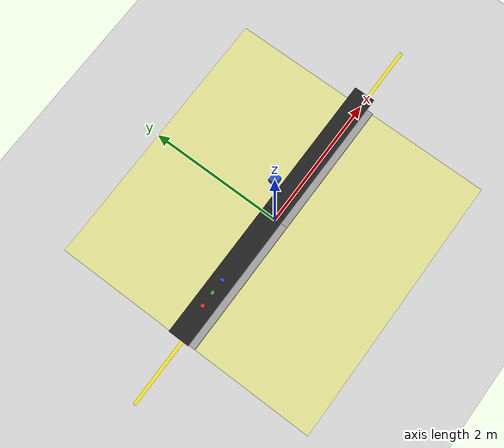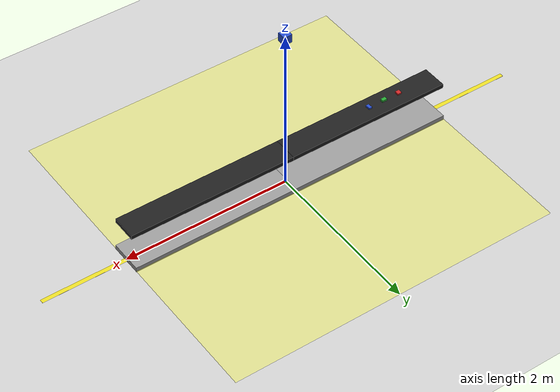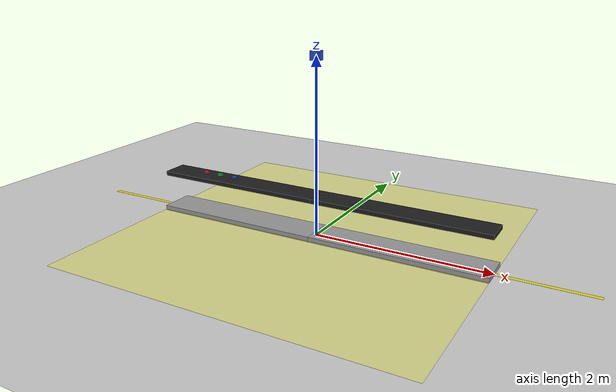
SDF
<?xml version="1.0" ?>
<sdf version="1.7">
  <world name="factory_testbed">
    <!-- Physics settings -->
    <physics name="default_physics" default="1" type="ode">
      <max_step_size>0.001</max_step_size>
      <real_time_factor>1.0</real_time_factor>
      <real_time_update_rate>1000</real_time_update_rate>
    </physics>

    <!-- Scene settings -->
    <scene>
      <ambient>0.4 0.4 0.4 1.0</ambient>
      <background>0.7 0.7 0.7 1.0</background>
      <shadows>1</shadows>
    </scene>

    <!-- Sun light -->
    <light type="directional" name="sun">
      <cast_shadows>true</cast_shadows>
      <pose>0 0 10 0 0 0</pose>
      <diffuse>0.8 0.8 0.8 1</diffuse>
      <specular>0.2 0.2 0.2 1</specular>
      <attenuation>
        <range>1000</range>
        <constant>0.9</constant>
        <linear>0.01</linear>
        <quadratic>0.001</quadratic>
      </attenuation>
      <direction>-0.5 0.1 -0.9</direction>
    </light>

    <!-- Additional factory lighting -->
    <light name="factory_light_1" type="point">
      <pose>-2 2 3 0 0 0</pose>
      <diffuse>0.6 0.6 0.6 1</diffuse>
      <specular>0.1 0.1 0.1 1</specular>
      <attenuation>
        <range>20</range>
        <constant>0.5</constant>
        <linear>0.01</linear>
        <quadratic>0.001</quadratic>
      </attenuation>
    </light>

    <light name="factory_light_2" type="point">
      <pose>2 2 3 0 0 0</pose>
      <diffuse>0.6 0.6 0.6 1</diffuse>
      <specular>0.1 0.1 0.1 1</specular>
      <attenuation>
        <range>20</range>
        <constant>0.5</constant>
        <linear>0.01</linear>
        <quadratic>0.001</quadratic>
      </attenuation>
    </light>

    <!-- Ground plane -->
    <model name="ground_plane">
      <static>true</static>
      <link name="link">
        <collision name="collision">
          <geometry>
            <plane>
              <normal>0 0 1</normal>
              <size>20 20</size>
            </plane>
          </geometry>
          <surface>
            <friction>
              <ode>
                <mu>100</mu>
                <mu2>50</mu2>
              </ode>
            </friction>
          </surface>
        </collision>
        <visual name="visual">
          <cast_shadows>false</cast_shadows>
          <geometry>
            <plane>
              <normal>0 0 1</normal>
              <size>20 20</size>
            </plane>
          </geometry>
          <material>
            <script>
              <uri>file://media/materials/scripts/gazebo.material</uri>
              <name>Gazebo/Grey</name>
            </script>
          </material>
        </visual>
      </link>
    </model>

    <!-- Factory floor markings -->
    <model name="factory_floor">
      <static>true</static>
      <pose>0 0 0.001 0 0 0</pose>
      <link name="floor_markings">
        <visual name="center_line">
          <pose>0 0 0 0 0 0</pose>
          <geometry>
            <box>
              <size>6 0.05 0.001</size>
            </box>
          </geometry>
          <material>
            <script>
              <uri>file://media/materials/scripts/gazebo.material</uri>
              <name>Gazebo/Yellow</name>
            </script>
          </material>
        </visual>

        <visual name="safety_zone_1">
          <pose>0 0 0 0 0 0</pose>
          <geometry>
            <box>
              <size>4 4 0.001</size>
            </box>
          </geometry>
          <material>
            <ambient>1 1 0 0.3</ambient>
            <diffuse>1 1 0 0.3</diffuse>
            <specular>0 0 0 0</specular>
          </material>
        </visual>
      </link>
    </model>

    <!-- Input Conveyor -->
    <model name="input_conveyor">
      <pose>-1.0 0 0 0 0 0</pose>
      <static>false</static>

      <!-- Conveyor frame -->
      <link name="frame">
        <inertial>
          <mass>100</mass>
          <inertia>
            <ixx>10</ixx>
            <iyy>50</iyy>
            <izz>50</izz>
          </inertia>
        </inertial>

        <!-- Frame structure -->
        <collision name="frame_collision">
          <geometry>
            <box>
              <size>2.0 0.4 0.8</size>
            </box>
          </geometry>
        </collision>

        <visual name="frame_visual">
          <geometry>
            <box>
              <size>2.0 0.4 0.1</size>
            </box>
          </geometry>
          <material>
            <script>
              <uri>file://media/materials/scripts/gazebo.material</uri>
              <name>Gazebo/Grey</name>
            </script>
          </material>
        </visual>
      </link>

      <!-- Conveyor belt surface -->
      <link name="belt">
        <pose>0 0 0.45 0 0 0</pose>
        <inertial>
          <mass>10</mass>
          <inertia>
            <ixx>1</ixx>
            <iyy>3</iyy>
            <izz>3</izz>
          </inertia>
        </inertial>

        <collision name="belt_collision">
          <geometry>
            <box>
              <size>2.0 0.3 0.05</size>
            </box>
          </geometry>
          <surface>
            <friction>
              <ode>
                <mu>0.8</mu>
                <mu2>0.8</mu2>
              </ode>
            </friction>
          </surface>
        </collision>

        <visual name="belt_visual">
          <geometry>
            <box>
              <size>2.0 0.3 0.05</size>
            </box>
          </geometry>
          <material>
            <script>
              <uri>file://media/materials/scripts/gazebo.material</uri>
              <name>Gazebo/Black</name>
            </script>
          </material>
        </visual>
      </link>

      <!-- Connect frame and belt -->
      <joint name="frame_to_belt" type="fixed">
        <parent>frame</parent>
        <child>belt</child>
      </joint>

      <!-- Belt movement plugin -->
      <plugin name="conveyor_belt_plugin" filename="libgazebo_ros_planar_move.so">
        <ros>
          <namespace>/input_conveyor</namespace>
        </ros>
        <update_rate>100</update_rate>
        <publish_rate>10</publish_rate>
      </plugin>
    </model>

    <!-- Output Conveyor -->
    <model name="output_conveyor">
      <pose>1.0 0 0 0 0 0</pose>
      <static>false</static>

      <!-- Conveyor frame -->
      <link name="frame">
        <inertial>
          <mass>100</mass>
          <inertia>
            <ixx>10</ixx>
            <iyy>50</iyy>
            <izz>50</izz>
          </inertia>
        </inertial>

        <!-- Frame structure -->
        <collision name="frame_collision">
          <geometry>
            <box>
              <size>2.0 0.4 0.8</size>
            </box>
          </geometry>
        </collision>

        <visual name="frame_visual">
          <geometry>
            <box>
              <size>2.0 0.4 0.1</size>
            </box>
          </geometry>
          <material>
            <script>
              <uri>file://media/materials/scripts/gazebo.material</uri>
              <name>Gazebo/Grey</name>
            </script>
          </material>
        </visual>
      </link>

      <!-- Conveyor belt surface -->
      <link name="belt">
        <pose>0 0 0.45 0 0 0</pose>
        <inertial>
          <mass>10</mass>
          <inertia>
            <ixx>1</ixx>
            <iyy>3</iyy>
            <izz>3</izz>
          </inertia>
        </inertial>

        <collision name="belt_collision">
          <geometry>
            <box>
              <size>2.0 0.3 0.05</size>
            </box>
          </geometry>
          <surface>
            <friction>
              <ode>
                <mu>0.8</mu>
                <mu2>0.8</mu2>
              </ode>
            </friction>
          </surface>
        </collision>

        <visual name="belt_visual">
          <geometry>
            <box>
              <size>2.0 0.3 0.05</size>
            </box>
          </geometry>
          <material>
            <script>
              <uri>file://media/materials/scripts/gazebo.material</uri>
              <name>Gazebo/Black</name>
            </script>
          </material>
        </visual>
      </link>

      <!-- Connect frame and belt -->
      <joint name="frame_to_belt" type="fixed">
        <parent>frame</parent>
        <child>belt</child>
      </joint>

      <!-- Belt movement plugin -->
      <plugin name="conveyor_belt_plugin" filename="libgazebo_ros_planar_move.so">
        <ros>
          <namespace>/output_conveyor</namespace>
        </ros>
        <update_rate>100</update_rate>
        <publish_rate>10</publish_rate>
      </plugin>
    </model>

    <!-- Overhead camera for vision system -->
    <model name="overhead_camera">
      <pose>0 0 2.0 0 1.5708 0</pose>
      <static>true</static>

      <link name="camera_link">
        <inertial>
          <mass>0.1</mass>
          <inertia>
            <ixx>0.001</ixx>
            <iyy>0.001</iyy>
            <izz>0.001</izz>
          </inertia>
        </inertial>

        <collision name="collision">
          <geometry>
            <box>
              <size>0.1 0.1 0.1</size>
            </box>
          </geometry>
        </collision>

        <visual name="visual">
          <geometry>
            <box>
              <size>0.1 0.1 0.1</size>
            </box>
          </geometry>
          <material>
            <script>
              <uri>file://media/materials/scripts/gazebo.material</uri>
              <name>Gazebo/Blue</name>
            </script>
          </material>
        </visual>

        <!-- Camera sensor -->
        <sensor name="camera" type="camera">
          <camera>
            <horizontal_fov>1.047</horizontal_fov>
            <image>
              <width>640</width>
              <height>480</height>
            </image>
            <clip>
              <near>0.1</near>
              <far>100</far>
            </clip>
          </camera>
          <always_on>1</always_on>
          <update_rate>30</update_rate>
          <visualize>true</visualize>

          <plugin name="camera_controller" filename="libgazebo_ros_camera.so">
            <ros>
              <namespace>/camera</namespace>
            </ros>
            <camera_name>overhead</camera_name>
            <frame_name>camera_link</frame_name>
          </plugin>
        </sensor>
      </link>
    </model>

    <!-- Sample colored parts for testing -->
    <model name="red_part_1">
      <pose>-1.5 0 0.5 0 0 0</pose>
      <link name="link">
        <inertial>
          <mass>0.1</mass>
          <inertia>
            <ixx>0.001</ixx>
            <iyy>0.001</iyy>
            <izz>0.001</izz>
          </inertia>
        </inertial>

        <collision name="collision">
          <geometry>
            <box>
              <size>0.05 0.05 0.02</size>
            </box>
          </geometry>
        </collision>

        <visual name="visual">
          <geometry>
            <box>
              <size>0.05 0.05 0.02</size>
            </box>
          </geometry>
          <material>
            <script>
              <uri>file://media/materials/scripts/gazebo.material</uri>
              <name>Gazebo/Red</name>
            </script>
          </material>
        </visual>
      </link>
    </model>

    <model name="green_part_1">
      <pose>-1.3 0 0.5 0 0 0</pose>
      <link name="link">
        <inertial>
          <mass>0.12</mass>
          <inertia>
            <ixx>0.001</ixx>
            <iyy>0.001</iyy>
            <izz>0.001</izz>
          </inertia>
        </inertial>

        <collision name="collision">
          <geometry>
            <box>
              <size>0.06 0.04 0.025</size>
            </box>
          </geometry>
        </collision>

        <visual name="visual">
          <geometry>
            <box>
              <size>0.06 0.04 0.025</size>
            </box>
          </geometry>
          <material>
            <script>
              <uri>file://media/materials/scripts/gazebo.material</uri>
              <name>Gazebo/Green</name>
            </script>
          </material>
        </visual>
      </link>
    </model>

    <model name="blue_part_1">
      <pose>-1.1 0 0.5 0 0 0</pose>
      <link name="link">
        <inertial>
          <mass>0.08</mass>
          <inertia>
            <ixx>0.001</ixx>
            <iyy>0.001</iyy>
            <izz>0.001</izz>
          </inertia>
        </inertial>

        <collision name="collision">
          <geometry>
            <box>
              <size>0.04 0.06 0.02</size>
            </box>
          </geometry>
        </collision>

        <visual name="visual">
          <geometry>
            <box>
              <size>0.04 0.06 0.02</size>
            </box>
          </geometry>
          <material>
            <script>
              <uri>file://media/materials/scripts/gazebo.material</uri>
              <name>Gazebo/Blue</name>
            </script>
          </material>
        </visual>
      </link>
    </model>

    <!-- ROS2 Gazebo plugins -->
    <plugin name="gazebo_ros_state" filename="libgazebo_ros_state.so">
      <ros>
        <namespace>/gazebo</namespace>
      </ros>
      <update_rate>1.0</update_rate>
    </plugin>

  </world>
</sdf>
